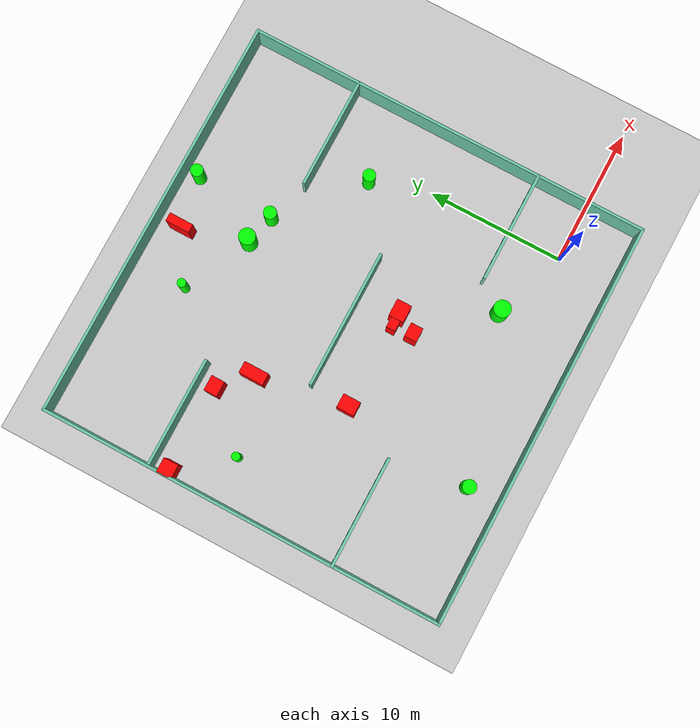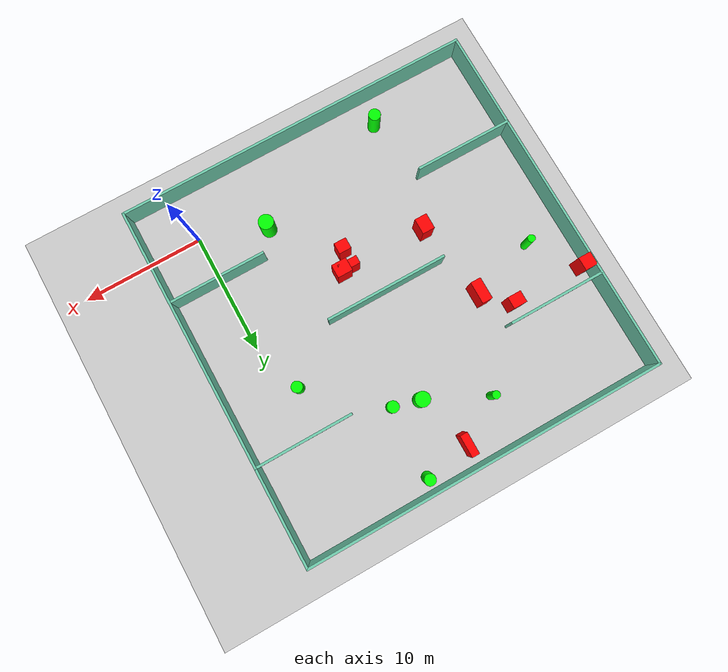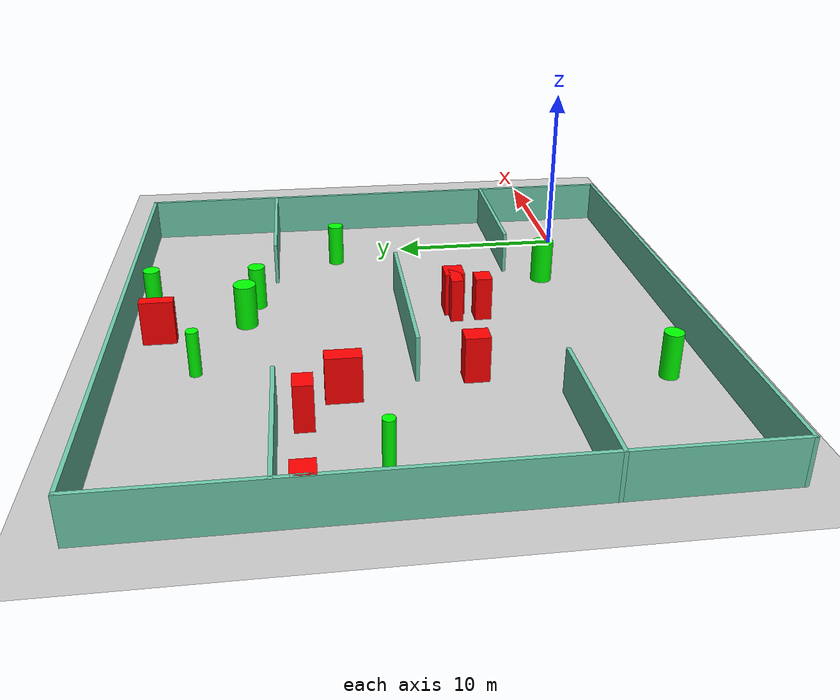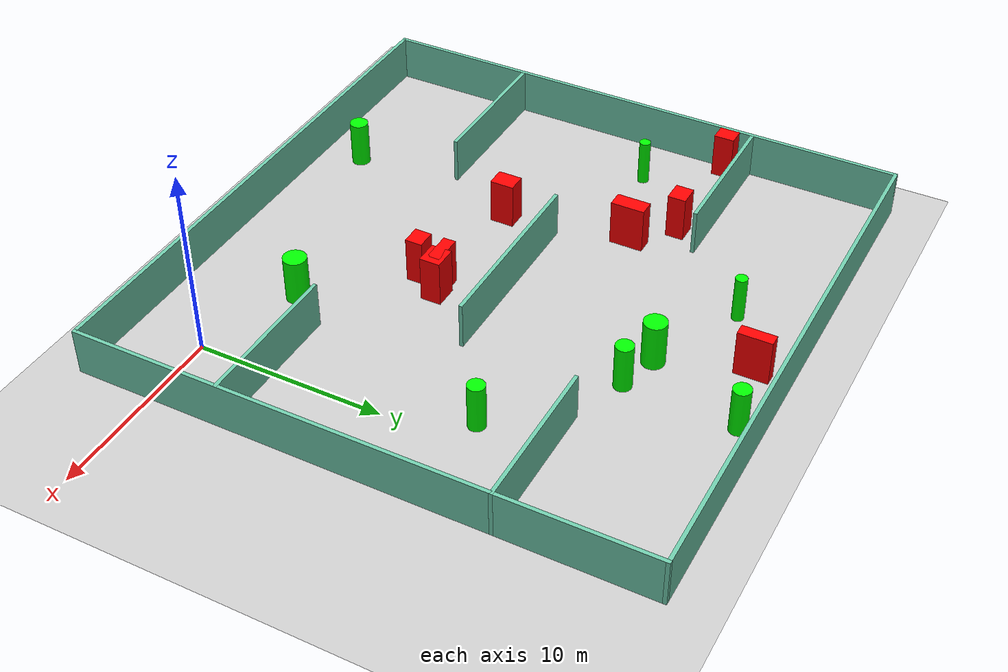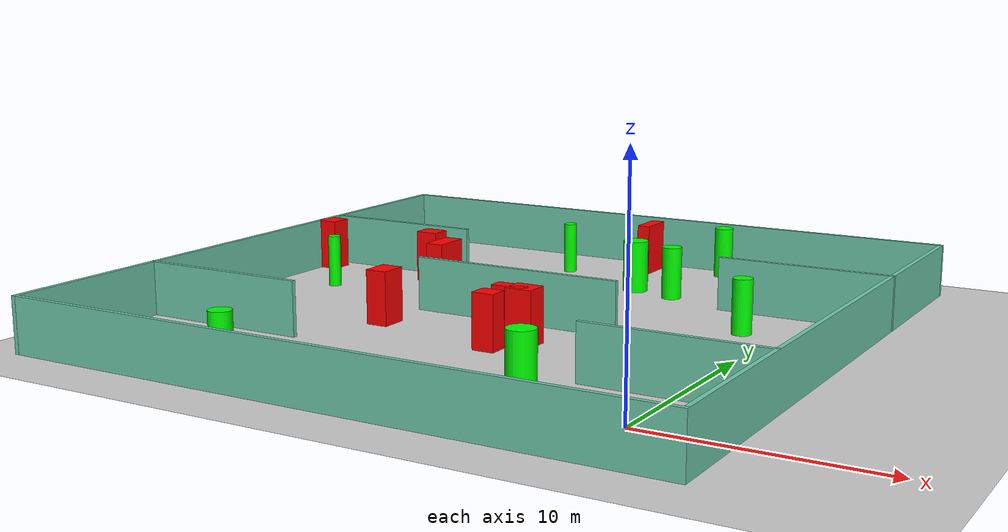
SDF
<sdf version="1.7">
 <world name="default">
  <light name="sun" type="directional">
   <pose>0 0 10 0 -0 0</pose>
   <diffuse>0.8 0.8 0.8 1</diffuse>
   <specular>0.2 0.2 0.2 1</specular>
   <attenuation>
    <range>1000</range>
    <constant>0.9</constant>
    <linear>0.01</linear>
    <quadratic>0.001</quadratic>
   </attenuation>
   <direction>-0.5 0.1 -0.9</direction>
   <spot><inner_angle>0</inner_angle><outer_angle>0</outer_angle><falloff>0</falloff></spot>
  </light>
  <model name="ground_plane">
   <static>1</static>
   <link name="link">
    <collision name="collision">
     <geometry><plane><normal>0 0 1</normal><size>100 100</size></plane></geometry>
     <surface>
      <contact><collide_bitmask>65535</collide_bitmask></contact>
      <friction><ode><mu>100</mu><mu2>50</mu2></ode></friction>
     </surface>
    </collision>
    <visual name="visual">
     <cast_shadows>0</cast_shadows>
     <geometry><plane><normal>0 0 1</normal><size>100 100</size></plane></geometry>
     <material>
      <script><uri>file://media/materials/scripts/gazebo.material</uri><name>Gazebo/Grey</name></script>
     </material>
    </visual>
   </link>
  </model>
  <gravity>0 0 -9.8</gravity>
  <magnetic_field>6e-06 2.3e-05 -4.2e-05</magnetic_field>
  <atmosphere type="adiabatic"/>
  <physics type="ode">
   <max_step_size>0.001</max_step_size>
   <real_time_factor>1</real_time_factor>
   <real_time_update_rate>1000</real_time_update_rate>
  </physics>
  <scene><ambient>0.4 0.4 0.4 1</ambient><background>0.7 0.7 0.7 1</background><shadows>1</shadows></scene>
  <spherical_coordinates>
   <surface_model>EARTH_WGS84</surface_model>
   <latitude_deg>0</latitude_deg>
   <longitude_deg>0</longitude_deg>
   <elevation>0</elevation>
   <heading_deg>0</heading_deg>
  </spherical_coordinates>
  <model name="my_base_walls">
   <link name="Wall_10">
    <collision name="Wall_10_Collision">
     <geometry><box><size>8.2 0.2 2.5</size></box></geometry>
     <pose>0 0 1.25 0 -0 0</pose>
    </collision>
    <visual name="Wall_10_Visual">
     <pose>0 0 1.25 0 -0 0</pose>
     <geometry><box><size>8.2 0.2 2.5</size></box></geometry>
     <material>
      <script><uri>file://media/materials/scripts/gazebo.material</uri><name>Gazebo/Grey</name></script>
      <ambient>0.435294 0.796078 0.67451 1</ambient>
     </material>
     <meta><layer>0</layer></meta>
    </visual>
    <pose>-11 -7 0 0 -0 0</pose>
   </link>
   <link name="Wall_12">
    <collision name="Wall_12_Collision">
     <geometry><box><size>8.2 0.2 2.5</size></box></geometry>
     <pose>0 0 1.25 0 -0 0</pose>
    </collision>
    <visual name="Wall_12_Visual">
     <pose>0 0 1.25 0 -0 0</pose>
     <geometry><box><size>8.2 0.2 2.5</size></box></geometry>
     <material>
      <script><uri>file://media/materials/scripts/gazebo.material</uri><name>Gazebo/Grey</name></script>
      <ambient>0.435294 0.796078 0.67451 1</ambient>
     </material>
     <meta><layer>0</layer></meta>
    </visual>
    <pose>-11 7 0 0 -0 0</pose>
   </link>
   <link name="Wall_14">
    <collision name="Wall_14_Collision">
     <geometry><box><size>8.2 0.2 2.5</size></box></geometry>
     <pose>0 0 1.25 0 -0 0</pose>
    </collision>
    <visual name="Wall_14_Visual">
     <pose>0 0 1.25 0 -0 0</pose>
     <geometry><box><size>8.2 0.2 2.5</size></box></geometry>
     <material>
      <script><uri>file://media/materials/scripts/gazebo.material</uri><name>Gazebo/Grey</name></script>
      <ambient>0.435294 0.796078 0.67451 1</ambient>
     </material>
     <meta><layer>0</layer></meta>
    </visual>
    <pose>11 7 0 0 -0 3.14159</pose>
   </link>
   <link name="Wall_16">
    <collision name="Wall_16_Collision">
     <geometry><box><size>10.2 0.2 2.5</size></box></geometry>
     <pose>0 0 1.25 0 -0 0</pose>
    </collision>
    <visual name="Wall_16_Visual">
     <pose>0 0 1.25 0 -0 0</pose>
     <geometry><box><size>10.2 0.2 2.5</size></box></geometry>
     <material>
      <script><uri>file://media/materials/scripts/gazebo.material</uri><name>Gazebo/Grey</name></script>
      <ambient>0.435294 0.796078 0.67451 1</ambient>
     </material>
     <meta><layer>0</layer></meta>
    </visual>
    <pose>0 0 0 0 -0 3.14159</pose>
   </link>
   <link name="Wall_2">
    <collision name="Wall_2_Collision">
     <geometry><box><size>30.2 0.2 2.5</size></box></geometry>
     <pose>0 0 1.25 0 -0 0</pose>
    </collision>
    <visual name="Wall_2_Visual">
     <pose>0 0 1.25 0 -0 0</pose>
     <geometry><box><size>30.2 0.2 2.5</size></box></geometry>
     <material>
      <script><uri>file://media/materials/scripts/gazebo.material</uri><name>Gazebo/Grey</name></script>
      <ambient>0.435294 0.796078 0.67451 1</ambient>
     </material>
     <meta><layer>0</layer></meta>
    </visual>
    <pose>0 -15 0 0 -0 3.14159</pose>
   </link>
   <link name="Wall_3">
    <collision name="Wall_3_Collision">
     <geometry><box><size>30.2 0.2 2.5</size></box></geometry>
     <pose>0 0 1.25 0 -0 0</pose>
    </collision>
    <visual name="Wall_3_Visual">
     <pose>0 0 1.25 0 -0 0</pose>
     <geometry><box><size>30.2 0.2 2.5</size></box></geometry>
     <material>
      <script><uri>file://media/materials/scripts/gazebo.material</uri><name>Gazebo/Grey</name></script>
      <ambient>0.435294 0.796078 0.67451 1</ambient>
     </material>
     <meta><layer>0</layer></meta>
    </visual>
    <pose>-15 0 0 0 -0 1.5708</pose>
   </link>
   <link name="Wall_4">
    <collision name="Wall_4_Collision">
     <geometry><box><size>30.2 0.2 2.5</size></box></geometry>
     <pose>0 0 1.25 0 -0 0</pose>
    </collision>
    <visual name="Wall_4_Visual">
     <pose>0 0 1.25 0 -0 0</pose>
     <geometry><box><size>30.2 0.2 2.5</size></box></geometry>
     <material>
      <script><uri>file://media/materials/scripts/gazebo.material</uri><name>Gazebo/Grey</name></script>
      <ambient>0.435294 0.796078 0.67451 1</ambient>
     </material>
     <meta><layer>0</layer></meta>
    </visual>
    <pose>0 15 0 0 -0 0</pose>
   </link>
   <link name="Wall_6">
    <collision name="Wall_6_Collision">
     <geometry><box><size>30.2 0.2 2.5</size></box></geometry>
     <pose>0 0 1.25 0 -0 0</pose>
    </collision>
    <visual name="Wall_6_Visual">
     <pose>0 0 1.25 0 -0 0</pose>
     <geometry><box><size>30.2 0.2 2.5</size></box></geometry>
     <material>
      <script><uri>file://media/materials/scripts/gazebo.material</uri><name>Gazebo/Grey</name></script>
      <ambient>0.435294 0.796078 0.67451 1</ambient>
     </material>
     <meta><layer>0</layer></meta>
    </visual>
    <pose>15 0 0 0 -0 1.5708</pose>
   </link>
   <link name="Wall_8">
    <collision name="Wall_8_Collision">
     <geometry><box><size>8.2 0.2 2.5</size></box></geometry>
     <pose>0 0 1.25 0 -0 0</pose>
    </collision>
    <visual name="Wall_8_Visual">
     <pose>0 0 1.25 0 -0 0</pose>
     <geometry><box><size>8.2 0.2 2.5</size></box></geometry>
     <material>
      <script><uri>file://media/materials/scripts/gazebo.material</uri><name>Gazebo/Grey</name></script>
      <ambient>0.435294 0.796078 0.67451 1</ambient>
     </material>
     <meta><layer>0</layer></meta>
    </visual>
    <pose>11 -7 0 0 -0 3.14159</pose>
   </link>
   <static>1</static>
   <pose>-11 11 0 0 -0 0</pose>
  </model>
  <model name="cylinder1">
   <static>1</static>
   <link name="link">
    <inertial>
     <mass>1</mass>
     <inertia><ixx>0.5</ixx><ixy>0</ixy><ixz>0</ixz><iyy>0.5</iyy><iyz>0</iyz><izz>1</izz></inertia>
    </inertial>
    <collision name="collision">
     <geometry><cylinder><radius>0.45242883024127734</radius><length>2.5</length></cylinder></geometry>
    </collision>
    <visual name="visual">
     <geometry><cylinder><radius>0.45242883024127734</radius><length>2.5</length></cylinder></geometry>
     <material>
      <ambient>0 1 0 1</ambient>
      <diffuse>0 1 0 1</diffuse>
      <specular>0.1 0.1 0.1 1</specular>
      <emissive>0 0 0 0</emissive>
     </material>
    </visual>
   </link>
   <pose>-1.4558025197597004 14.287953661305654 1.25 0 0 0</pose>
  </model>
  <model name="cylinder2">
   <static>1</static>
   <link name="link">
    <inertial>
     <mass>1</mass>
     <inertia><ixx>0.5</ixx><ixy>0</ixy><ixz>0</ixz><iyy>0.5</iyy><iyz>0</iyz><izz>1</izz></inertia>
    </inertial>
    <collision name="collision">
     <geometry><cylinder><radius>0.45792281980747</radius><length>2.5</length></cylinder></geometry>
    </collision>
    <visual name="visual">
     <geometry><cylinder><radius>0.45792281980747</radius><length>2.5</length></cylinder></geometry>
     <material>
      <ambient>0 1 0 1</ambient>
      <diffuse>0 1 0 1</diffuse>
      <specular>0.1 0.1 0.1 1</specular>
      <emissive>0 0 0 0</emissive>
     </material>
    </visual>
   </link>
   <pose>-6.746524499728695 24.915784229587977 1.25 0 0 0</pose>
  </model>
  <model name="cylinder3">
   <static>1</static>
   <link name="link">
    <inertial>
     <mass>1</mass>
     <inertia><ixx>0.5</ixx><ixy>0</ixy><ixz>0</ixz><iyy>0.5</iyy><iyz>0</iyz><izz>1</izz></inertia>
    </inertial>
    <collision name="collision">
     <geometry><cylinder><radius>0.30571833536453036</radius><length>2.5</length></cylinder></geometry>
    </collision>
    <visual name="visual">
     <geometry><cylinder><radius>0.30571833536453036</radius><length>2.5</length></cylinder></geometry>
     <material>
      <ambient>0 1 0 1</ambient>
      <diffuse>0 1 0 1</diffuse>
      <specular>0.1 0.1 0.1 1</specular>
      <emissive>0 0 0 0</emissive>
     </material>
    </visual>
   </link>
   <pose>-22.657652017697643 13.104205249009802 1.25 0 0 0</pose>
  </model>
  <model name="cylinder4">
   <static>1</static>
   <link name="link">
    <inertial>
     <mass>1</mass>
     <inertia><ixx>0.5</ixx><ixy>0</ixy><ixz>0</ixz><iyy>0.5</iyy><iyz>0</iyz><izz>1</izz></inertia>
    </inertial>
    <collision name="collision">
     <geometry><cylinder><radius>0.31832883935798123</radius><length>2.5</length></cylinder></geometry>
    </collision>
    <visual name="visual">
     <geometry><cylinder><radius>0.31832883935798123</radius><length>2.5</length></cylinder></geometry>
     <material>
      <ambient>0 1 0 1</ambient>
      <diffuse>0 1 0 1</diffuse>
      <specular>0.1 0.1 0.1 1</specular>
      <emissive>0 0 0 0</emissive>
     </material>
    </visual>
   </link>
   <pose>-14.106059608439843 22.014329175301825 1.25 0 0 0</pose>
  </model>
  <model name="cylinder5">
   <static>1</static>
   <link name="link">
    <inertial>
     <mass>1</mass>
     <inertia><ixx>0.5</ixx><ixy>0</ixy><ixz>0</ixz><iyy>0.5</iyy><iyz>0</iyz><izz>1</izz></inertia>
    </inertial>
    <collision name="collision">
     <geometry><cylinder><radius>0.622005573782991</radius><length>2.5</length></cylinder></geometry>
    </collision>
    <visual name="visual">
     <geometry><cylinder><radius>0.622005573782991</radius><length>2.5</length></cylinder></geometry>
     <material>
      <ambient>0 1 0 1</ambient>
      <diffuse>0 1 0 1</diffuse>
      <specular>0.1 0.1 0.1 1</specular>
      <emissive>0 0 0 0</emissive>
     </material>
    </visual>
   </link>
   <pose>-5.377076358671898 1.9587974298298825 1.25 0 0 0</pose>
  </model>
  <model name="cylinder6">
   <static>1</static>
   <link name="link">
    <inertial>
     <mass>1</mass>
     <inertia><ixx>0.5</ixx><ixy>0</ixy><ixz>0</ixz><iyy>0.5</iyy><iyz>0</iyz><izz>1</izz></inertia>
    </inertial>
    <collision name="collision">
     <geometry><cylinder><radius>0.6053250801429133</radius><length>2.5</length></cylinder></geometry>
    </collision>
    <visual name="visual">
     <geometry><cylinder><radius>0.6053250801429133</radius><length>2.5</length></cylinder></geometry>
     <material>
      <ambient>0 1 0 1</ambient>
      <diffuse>0 1 0 1</diffuse>
      <specular>0.1 0.1 0.1 1</specular>
      <emissive>0 0 0 0</emissive>
     </material>
    </visual>
   </link>
   <pose>-9.180655950754684 19.63601477406495 1.25 0 0 0</pose>
  </model>
  <model name="cylinder7">
   <static>1</static>
   <link name="link">
    <inertial>
     <mass>1</mass>
     <inertia><ixx>0.5</ixx><ixy>0</ixy><ixz>0</ixz><iyy>0.5</iyy><iyz>0</iyz><izz>1</izz></inertia>
    </inertial>
    <collision name="collision">
     <geometry><cylinder><radius>0.4716377042299108</radius><length>2.5</length></cylinder></geometry>
    </collision>
    <visual name="visual">
     <geometry><cylinder><radius>0.4716377042299108</radius><length>2.5</length></cylinder></geometry>
     <material>
      <ambient>0 1 0 1</ambient>
      <diffuse>0 1 0 1</diffuse>
      <specular>0.1 0.1 0.1 1</specular>
      <emissive>0 0 0 0</emissive>
     </material>
    </visual>
   </link>
   <pose>-6.9822799190178575 19.053019010529315 1.25 0 0 0</pose>
  </model>
  <model name="cylinder8">
   <static>1</static>
   <link name="link">
    <inertial>
     <mass>1</mass>
     <inertia><ixx>0.5</ixx><ixy>0</ixy><ixz>0</ixz><iyy>0.5</iyy><iyz>0</iyz><izz>1</izz></inertia>
    </inertial>
    <collision name="collision">
     <geometry><cylinder><radius>0.4995322218629914</radius><length>2.5</length></cylinder></geometry>
    </collision>
    <visual name="visual">
     <geometry><cylinder><radius>0.4995322218629914</radius><length>2.5</length></cylinder></geometry>
     <material>
      <ambient>0 1 0 1</ambient>
      <diffuse>0 1 0 1</diffuse>
      <specular>0.1 0.1 0.1 1</specular>
      <emissive>0 0 0 0</emissive>
     </material>
    </visual>
   </link>
   <pose>-17.06341034542876 -1.6154780754634253 1.25 0 0 0</pose>
  </model>
  <model name="box1">
   <static>1</static>
   <link name="link">
    <inertial>
     <mass>1</mass>
     <inertia><ixx>0.083</ixx><ixy>0</ixy><ixz>0</ixz><iyy>0.083</iyy><iyz>0</iyz><izz>0.083</izz></inertia>
    </inertial>
    <collision name="collision">
     <geometry><box><size>1.0280055256594554 1.299090729942106 2.5</size></box></geometry>
    </collision>
    <visual name="visual">
     <geometry><box><size>1.0280055256594554 1.299090729942106 2.5</size></box></geometry>
     <material>
      <ambient>1 0 0 1</ambient>
      <diffuse>1 0 0 1</diffuse>
      <specular>0.1 0.1 0.1 1</specular>
      <emissive>0 0 0 0</emissive>
     </material>
    </visual>
    <sensor name="my_contact" type="contact">
     <contact><collision>box_collision</collision><topic>__default_topic__</topic></contact>
    </sensor>
   </link>
   <pose>-16.04501930935164 8.079737084373283 1.25 0 0 0</pose>
  </model>
  <model name="box2">
   <static>1</static>
   <link name="link">
    <inertial>
     <mass>1</mass>
     <inertia><ixx>0.083</ixx><ixy>0</ixy><ixz>0</ixz><iyy>0.083</iyy><iyz>0</iyz><izz>0.083</izz></inertia>
    </inertial>
    <collision name="collision">
     <geometry><box><size>1.0306434598644358 0.9192487670910867 2.5</size></box></geometry>
    </collision>
    <visual name="visual">
     <geometry><box><size>1.0306434598644358 0.9192487670910867 2.5</size></box></geometry>
     <material>
      <ambient>1 0 0 1</ambient>
      <diffuse>1 0 0 1</diffuse>
      <specular>0.1 0.1 0.1 1</specular>
      <emissive>0 0 0 0</emissive>
     </material>
    </visual>
    <sensor name="my_contact" type="contact">
     <contact><collision>box_collision</collision><topic>__default_topic__</topic></contact>
    </sensor>
   </link>
   <pose>-9.644638502766735 6.5125096794527195 1.25 0 0 0</pose>
  </model>
  <model name="box3">
   <static>1</static>
   <link name="link">
    <inertial>
     <mass>1</mass>
     <inertia><ixx>0.083</ixx><ixy>0</ixy><ixz>0</ixz><iyy>0.083</iyy><iyz>0</iyz><izz>0.083</izz></inertia>
    </inertial>
    <collision name="collision">
     <geometry><box><size>1.2640313094442268 1.1042765731200497 2.5</size></box></geometry>
    </collision>
    <visual name="visual">
     <geometry><box><size>1.2640313094442268 1.1042765731200497 2.5</size></box></geometry>
     <material>
      <ambient>1 0 0 1</ambient>
      <diffuse>1 0 0 1</diffuse>
      <specular>0.1 0.1 0.1 1</specular>
      <emissive>0 0 0 0</emissive>
     </material>
    </visual>
    <sensor name="my_contact" type="contact">
     <contact><collision>box_collision</collision><topic>__default_topic__</topic></contact>
    </sensor>
   </link>
   <pose>-8.764617559221321 8.004863056447729 1.25 0 0 0</pose>
  </model>
  <model name="box4">
   <static>1</static>
   <link name="link">
    <inertial>
     <mass>1</mass>
     <inertia><ixx>0.083</ixx><ixy>0</ixy><ixz>0</ixz><iyy>0.083</iyy><iyz>0</iyz><izz>0.083</izz></inertia>
    </inertial>
    <collision name="collision">
     <geometry><box><size>1.1315302032378867 0.9772333603630721 2.5</size></box></geometry>
    </collision>
    <visual name="visual">
     <geometry><box><size>1.1315302032378867 0.9772333603630721 2.5</size></box></geometry>
     <material>
      <ambient>1 0 0 1</ambient>
      <diffuse>1 0 0 1</diffuse>
      <specular>0.1 0.1 0.1 1</specular>
      <emissive>0 0 0 0</emissive>
     </material>
    </visual>
    <sensor name="my_contact" type="contact">
     <contact><collision>box_collision</collision><topic>__default_topic__</topic></contact>
    </sensor>
   </link>
   <pose>-19.20801256400747 16.659689525148796 1.25 0 0 0</pose>
  </model>
  <model name="box5">
   <static>1</static>
   <link name="link">
    <inertial>
     <mass>1</mass>
     <inertia><ixx>0.083</ixx><ixy>0</ixy><ixz>0</ixz><iyy>0.083</iyy><iyz>0</iyz><izz>0.083</izz></inertia>
    </inertial>
    <collision name="collision">
     <geometry><box><size>1.6619357910459471 0.6707376893501047 2.5</size></box></geometry>
    </collision>
    <visual name="visual">
     <geometry><box><size>1.6619357910459471 0.6707376893501047 2.5</size></box></geometry>
     <material>
      <ambient>1 0 0 1</ambient>
      <diffuse>1 0 0 1</diffuse>
      <specular>0.1 0.1 0.1 1</specular>
      <emissive>0 0 0 0</emissive>
     </material>
    </visual>
    <sensor name="my_contact" type="contact">
     <contact><collision>box_collision</collision><topic>__default_topic__</topic></contact>
    </sensor>
   </link>
   <pose>-9.356343364090783 8.004241241972707 1.25 0 0 0</pose>
  </model>
  <model name="box6">
   <static>1</static>
   <link name="link">
    <inertial>
     <mass>1</mass>
     <inertia><ixx>0.083</ixx><ixy>0</ixy><ixz>0</ixz><iyy>0.083</iyy><iyz>0</iyz><izz>0.083</izz></inertia>
    </inertial>
    <collision name="collision">
     <geometry><box><size>1.0596106007605854 1.0950072789070955 2.5</size></box></geometry>
    </collision>
    <visual name="visual">
     <geometry><box><size>1.0596106007605854 1.0950072789070955 2.5</size></box></geometry>
     <material>
      <ambient>1 0 0 1</ambient>
      <diffuse>1 0 0 1</diffuse>
      <specular>0.1 0.1 0.1 1</specular>
      <emissive>0 0 0 0</emissive>
     </material>
    </visual>
    <sensor name="my_contact" type="contact">
     <contact><collision>box_collision</collision><topic>__default_topic__</topic></contact>
    </sensor>
   </link>
   <pose>-25.51370844531965 16.743167178746294 1.25 0 0 0</pose>
  </model>
  <model name="box7">
   <static>1</static>
   <link name="link">
    <inertial>
     <mass>1</mass>
     <inertia><ixx>0.083</ixx><ixy>0</ixy><ixz>0</ixz><iyy>0.083</iyy><iyz>0</iyz><izz>0.083</izz></inertia>
    </inertial>
    <collision name="collision">
     <geometry><box><size>0.6313672452225999 1.7854112967223754 2.5</size></box></geometry>
    </collision>
    <visual name="visual">
     <geometry><box><size>0.6313672452225999 1.7854112967223754 2.5</size></box></geometry>
     <material>
      <ambient>1 0 0 1</ambient>
      <diffuse>1 0 0 1</diffuse>
      <specular>0.1 0.1 0.1 1</specular>
      <emissive>0 0 0 0</emissive>
     </material>
    </visual>
    <sensor name="my_contact" type="contact">
     <contact><collision>box_collision</collision><topic>__default_topic__</topic></contact>
    </sensor>
   </link>
   <pose>-10.529211287798223 24.17677274716966 1.25 0 0 0</pose>
  </model>
  <model name="box8">
   <static>1</static>
   <link name="link">
    <inertial>
     <mass>1</mass>
     <inertia><ixx>0.083</ixx><ixy>0</ixy><ixz>0</ixz><iyy>0.083</iyy><iyz>0</iyz><izz>0.083</izz></inertia>
    </inertial>
    <collision name="collision">
     <geometry><box><size>0.8673426253889045 1.8216214596494222 2.5</size></box></geometry>
    </collision>
    <visual name="visual">
     <geometry><box><size>0.8673426253889045 1.8216214596494222 2.5</size></box></geometry>
     <material>
      <ambient>1 0 0 1</ambient>
      <diffuse>1 0 0 1</diffuse>
      <specular>0.1 0.1 0.1 1</specular>
      <emissive>0 0 0 0</emissive>
     </material>
    </visual>
    <sensor name="my_contact" type="contact">
     <contact><collision>box_collision</collision><topic>__default_topic__</topic></contact>
    </sensor>
   </link>
   <pose>-17.19140447853814 14.728601594722814 1.25 0 0 0</pose>
  </model>
 </world>
</sdf>
